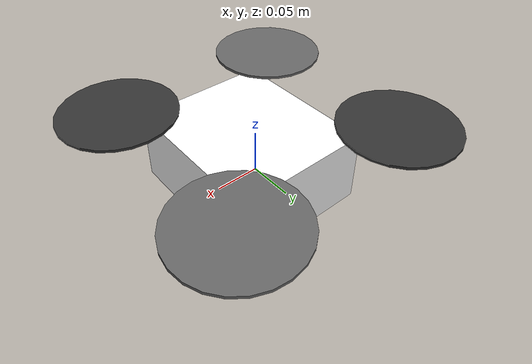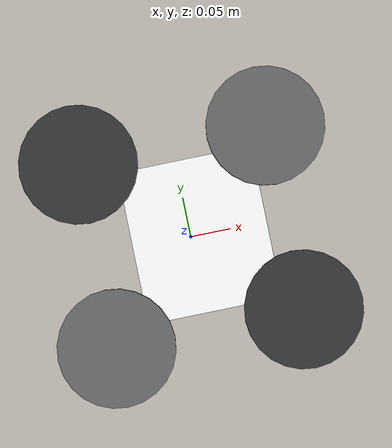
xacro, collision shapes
<?xml version="1.0"?>
<robot name="uav_v4" xmlns:xacro="http://www.ros.org/wiki/xacro">
  <xacro:arg name="ground_structure" default="false"/>
  <xacro:arg name="ground_plugin" default="false"/>

  <link name="uav_v4/base_link">
    <inertial>
      <origin xyz="0.00204935628833 0.0000249263925494 0.0218721936748"
              rpy="0 0 0"/>
      <mass value="3.0240996088045096"/>
      <inertia ixx="0.00870237516465" ixy="-0.00000178664119371"
               ixz="0.0000403622929252" iyy="0.00801472699005"
               iyz="0.00000838959092759" izz="0.0147215634579"/>
    </inertial>

    <!-- Fixed CAD visuals: no CAD mesh is used as a collision. -->
    <visual name="cad_base">
      <geometry><mesh filename="package://uav_v4/meshes/base_link.STL"/></geometry>
      <material name="cad_white"><color rgba="1 1 1 1"/></material>
    </visual>
    <visual name="cad_arm_1">
      <origin xyz="0.0475 -0.0455 0.04" rpy="0 0 0"/>
      <geometry><mesh filename="package://uav_v4/meshes/arm1_link.STL"/></geometry>
    </visual>
    <visual name="cad_arm_2">
      <origin xyz="-0.0475 0.0455 0.04" rpy="0 0 0"/>
      <geometry><mesh filename="package://uav_v4/meshes/arm2_link.STL"/></geometry>
    </visual>
    <visual name="cad_arm_3">
      <origin xyz="0.0475 0.0455 0.04" rpy="0 0 0"/>
      <geometry><mesh filename="package://uav_v4/meshes/arm3_link.STL"/></geometry>
    </visual>
    <visual name="cad_arm_4">
      <origin xyz="-0.0475 -0.0455 0.04" rpy="0 0 0"/>
      <geometry><mesh filename="package://uav_v4/meshes/arm4_link.STL"/></geometry>
    </visual>
    <visual name="cad_wing_1">
      <origin xyz="0.104504 -0.10182 0.0693" rpy="0 0 0"/>
      <geometry><mesh filename="package://uav_v4/meshes/wing1_link.STL"/></geometry>
    </visual>
    <visual name="cad_wing_2">
      <origin xyz="-0.104245 0.101756 0.0693" rpy="0 0 0"/>
      <geometry><mesh filename="package://uav_v4/meshes/wing2_link.STL"/></geometry>
    </visual>
    <visual name="cad_wing_3">
      <origin xyz="0.103619440914974 0.102344290523756 0.0693" rpy="0 0 0"/>
      <geometry><mesh filename="package://uav_v4/meshes/wing3_link.STL"/></geometry>
    </visual>
    <visual name="cad_wing_4">
      <origin xyz="-0.103669 -0.102494 0.0693" rpy="0 0 0"/>
      <geometry><mesh filename="package://uav_v4/meshes/wing4_link.STL"/></geometry>
    </visual>
    <visual name="cad_wheel_1">
      <origin xyz="0.04 -0.088 -0.015" rpy="0 0 0"/>
      <geometry><mesh filename="package://uav_v4/meshes/wheel1_link.STL"/></geometry>
    </visual>
    <visual name="cad_wheel_2">
      <origin xyz="-0.04 -0.088 -0.015" rpy="0 0 0"/>
      <geometry><mesh filename="package://uav_v4/meshes/wheel2_link.STL"/></geometry>
    </visual>
    <visual name="cad_wheel_3">
      <origin xyz="0.04 0.088 -0.015" rpy="0 0 0"/>
      <geometry><mesh filename="package://uav_v4/meshes/wheel3_link.STL"/></geometry>
    </visual>
    <visual name="cad_wheel_4">
      <origin xyz="-0.04 0.088 -0.015" rpy="0 0 0"/>
      <geometry><mesh filename="package://uav_v4/meshes/wheel4_link.STL"/></geometry>
    </visual>

    <!-- Stable primary flight-body collision. -->
    <collision name="primary_body_collision">
      <origin xyz="0.01 0 0.025" rpy="0 0 0"/>
      <geometry><box size="0.15 0.17 0.08"/></geometry>
    </collision>

    <!-- Stage B/C only: four simple fixed wheel contact proxies. No dynamic
         wheel joints are needed by the body-level planar ground semantics. -->
    <xacro:if value="$(arg ground_structure)">
      <collision name="wheel_1_proxy">
        <origin xyz="0.04 -0.088 -0.015" rpy="1.57079632679 0 0"/>
        <geometry><cylinder radius="0.029" length="0.0315"/></geometry>
      </collision>
      <collision name="wheel_2_proxy">
        <origin xyz="-0.04 -0.088 -0.015" rpy="1.57079632679 0 0"/>
        <geometry><cylinder radius="0.029" length="0.0315"/></geometry>
      </collision>
      <collision name="wheel_3_proxy">
        <origin xyz="0.04 0.088 -0.015" rpy="1.57079632679 0 0"/>
        <geometry><cylinder radius="0.029" length="0.0315"/></geometry>
      </collision>
      <collision name="wheel_4_proxy">
        <origin xyz="-0.04 0.088 -0.015" rpy="1.57079632679 0 0"/>
        <geometry><cylinder radius="0.029" length="0.0315"/></geometry>
      </collision>
    </xacro:if>
  </link>

  <xacro:macro name="native_rotor" params="number xyz direction color">
    <joint name="uav_v4/rotor_${number}_joint" type="continuous">
      <origin xyz="${xyz}" rpy="0 0 0"/>
      <parent link="uav_v4/base_link"/>
      <child link="uav_v4/rotor_${number}"/>
      <axis xyz="0 0 1"/>
    </joint>
    <link name="uav_v4/rotor_${number}">
      <inertial>
        <mass value="0.005"/>
        <!-- RotorS stock pattern: inertia uses mass*slowdown (0.05 kg)
             to preserve numerical rotor angular momentum. -->
        <inertia ixx="9.75e-07" ixy="0" ixz="0"
                 iyy="1.76416666667e-05" iyz="0"
                 izz="1.85416666667e-05"/>
      </inertial>
      <visual>
        <geometry>
          <mesh filename="package://rotors_description/meshes/propeller_${direction}.dae"
                scale="0.065 0.065 0.065"/>
        </geometry>
        <material name="rotor_${number}_${color}"><color rgba="${color}"/></material>
      </visual>
      <collision>
        <geometry><cylinder radius="0.065" length="0.003"/></geometry>
      </collision>
    </link>
    <gazebo>
      <plugin name="uav_v4_native_motor_${number}"
              filename="librotors_gazebo_motor_model.so">
        <robotNamespace>uav_v4</robotNamespace>
        <jointName>uav_v4/rotor_${number}_joint</jointName>
        <linkName>uav_v4/rotor_${number}</linkName>
        <turningDirection>${direction}</turningDirection>
        <timeConstantUp>0.0125</timeConstantUp>
        <timeConstantDown>0.025</timeConstantDown>
        <maxRotVelocity>1100</maxRotVelocity>
        <motorConstant>1.568e-05</motorConstant>
        <momentConstant>0.06</momentConstant>
        <commandSubTopic>gazebo/command/motor_speed</commandSubTopic>
        <motorNumber>${number}</motorNumber>
        <rotorDragCoefficient>0.000175</rotorDragCoefficient>
        <rollingMomentCoefficient>1e-06</rollingMomentCoefficient>
        <motorSpeedPubTopic>motor_speed/${number}</motorSpeedPubTopic>
        <rotorVelocitySlowdownSim>10</rotorVelocitySlowdownSim>
      </plugin>
    </gazebo>
  </xacro:macro>

  <xacro:native_rotor number="0" xyz="0.104504 -0.10182 0.0693"
                       direction="ccw" color="0.2 0.2 0.2 1"/>
  <xacro:native_rotor number="1" xyz="-0.104245 0.101756 0.0693"
                       direction="ccw" color="0.2 0.2 0.2 1"/>
  <xacro:native_rotor number="2" xyz="0.103619440914974 0.102344290523756 0.0693"
                       direction="cw" color="0.4 0.4 0.4 1"/>
  <xacro:native_rotor number="3" xyz="-0.103669 -0.102494 0.0693"
                       direction="cw" color="0.4 0.4 0.4 1"/>

  <gazebo>
    <plugin name="uav_v4_native_multirotor_base"
            filename="librotors_gazebo_multirotor_base_plugin.so">
      <robotNamespace>uav_v4</robotNamespace>
      <linkName>uav_v4/base_link</linkName>
      <rotorVelocitySlowdownSim>10</rotorVelocitySlowdownSim>
    </plugin>
    <plugin name="uav_v4_native_controller_interface"
            filename="librotors_gazebo_controller_interface.so">
      <robotNamespace>uav_v4</robotNamespace>
      <commandAttitudeThrustSubTopic>command/attitude</commandAttitudeThrustSubTopic>
      <commandRateThrustSubTopic>command/rate</commandRateThrustSubTopic>
      <commandMotorSpeedSubTopic>command/motor_speed</commandMotorSpeedSubTopic>
      <imuSubTopic>imu</imuSubTopic>
      <motorSpeedCommandPubTopic>gazebo/command/motor_speed</motorSpeedCommandPubTopic>
    </plugin>
    <plugin name="uav_v4_native_imu" filename="librotors_gazebo_imu_plugin.so">
      <robotNamespace>uav_v4</robotNamespace>
      <linkName>uav_v4/base_link</linkName>
      <imuTopic>imu</imuTopic>
      <gyroscopeNoiseDensity>0.0003394</gyroscopeNoiseDensity>
      <gyroscopeRandomWalk>3.8785e-05</gyroscopeRandomWalk>
      <gyroscopeBiasCorrelationTime>1000.0</gyroscopeBiasCorrelationTime>
      <gyroscopeTurnOnBiasSigma>0.0087</gyroscopeTurnOnBiasSigma>
      <accelerometerNoiseDensity>0.004</accelerometerNoiseDensity>
      <accelerometerRandomWalk>0.006</accelerometerRandomWalk>
      <accelerometerBiasCorrelationTime>300.0</accelerometerBiasCorrelationTime>
      <accelerometerTurnOnBiasSigma>0.196</accelerometerTurnOnBiasSigma>
    </plugin>
    <plugin name="uav_v4_native_odometry"
            filename="librotors_gazebo_odometry_plugin.so">
      <robotNamespace>uav_v4</robotNamespace>
      <linkName>uav_v4/base_link</linkName>
      <poseTopic>pose</poseTopic>
      <poseWithCovarianceTopic>pose_with_covariance</poseWithCovarianceTopic>
      <positionTopic>position</positionTopic>
      <transformTopic>transform</transformTopic>
      <odometryTopic>odometry</odometryTopic>
      <parentFrameId>world</parentFrameId>
      <childFrameId>uav_v4/base_link</childFrameId>
      <measurementDivisor>1</measurementDivisor>
      <measurementDelay>0</measurementDelay>
      <unknownDelay>0.0</unknownDelay>
      <noiseNormalPosition>0 0 0</noiseNormalPosition>
      <noiseNormalQuaternion>0 0 0</noiseNormalQuaternion>
      <noiseNormalLinearVelocity>0 0 0</noiseNormalLinearVelocity>
      <noiseNormalAngularVelocity>0 0 0</noiseNormalAngularVelocity>
      <noiseUniformPosition>0 0 0</noiseUniformPosition>
      <noiseUniformQuaternion>0 0 0</noiseUniformQuaternion>
      <noiseUniformLinearVelocity>0 0 0</noiseUniformLinearVelocity>
      <noiseUniformAngularVelocity>0 0 0</noiseUniformAngularVelocity>
    </plugin>
    <!-- Replaceable takeoff-site measurement contract. This simulator sensor
         only observes collision geometry and contacts; it applies no force and
         sends no model-state command. -->
    <plugin name="uav_v4_takeoff_clearance"
            filename="libtakeoff_clearance_plugin.so">
      <targetAltitude>1.2</targetAltitude>
      <safetyMargin>0.02</safetyMargin>
      <supportSurfaceTolerance>0.01</supportSurfaceTolerance>
      <updateRate>50.0</updateRate>
      <statusTopic>/rescue/rotors/takeoff_clearance</statusTopic>
      <atomicStatusTopic>/rescue/rotors/takeoff_site_status</atomicStatusTopic>
      <validTopic>/rescue/rotors/takeoff_site_valid</validTopic>
      <measurementValidTopic>/rescue/rotors/takeoff_measurement_valid</measurementValidTopic>
      <reasonTopic>/rescue/rotors/takeoff_blocked_reason</reasonTopic>
      <recheckDistanceTopic>/rescue/rotors/takeoff_recheck_distance</recheckDistanceTopic>
      <contactTopic>/rescue/rotors/obstacle_contact</contactTopic>
      <contactForceTopic>/rescue/rotors/obstacle_contact_force_n</contactForceTopic>
    </plugin>
    <xacro:if value="$(arg ground_plugin)">
      <plugin name="uav_v4_native_mode_aware_ground"
              filename="libmode_aware_planar_move_plugin.so">
        <commandTopic>/mecanum/cmd_vel</commandTopic>
        <modeTopic>/rescue/mode</modeTopic>
        <disarmedTopic>/rescue/rotors/disarmed</disarmedTopic>
        <groundOwnershipTopic>/rescue/rotors/ground_ownership</groundOwnershipTopic>
        <groundActiveTopic>/rescue/rotors/ground_control_active</groundActiveTopic>
        <groundWrenchTopic>/rescue/rotors/ground_control_wrench</groundWrenchTopic>
        <commandTimeout>0.5</commandTimeout>
        <planarVelocityGain>32.0</planarVelocityGain>
        <maxPlanarAcceleration>1.5</maxPlanarAcceleration>
        <groundHeight>0.044</groundHeight>
        <verticalKp>800.0</verticalKp>
        <verticalKd>50.0</verticalKd>
        <maxVerticalForce>29.83</maxVerticalForce>
        <levelKp>1.0</levelKp>
        <levelKd>0.15</levelKd>
        <maxLevelTorque>0.6</maxLevelTorque>
        <yawRateGain>8.0</yawRateGain>
        <maxYawTorque>0.06</maxYawTorque>
        <wheelProxyFriction>0.05</wheelProxyFriction>
      </plugin>
    </xacro:if>
  </gazebo>
</robot>
